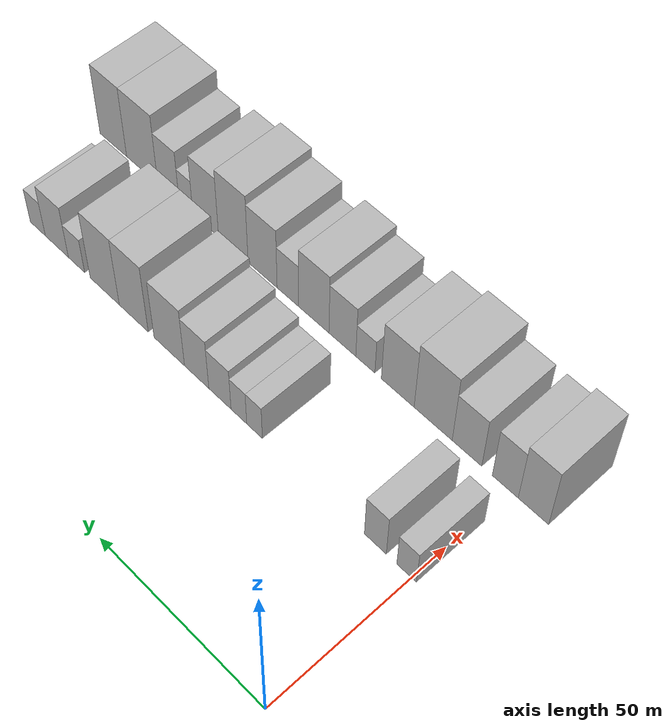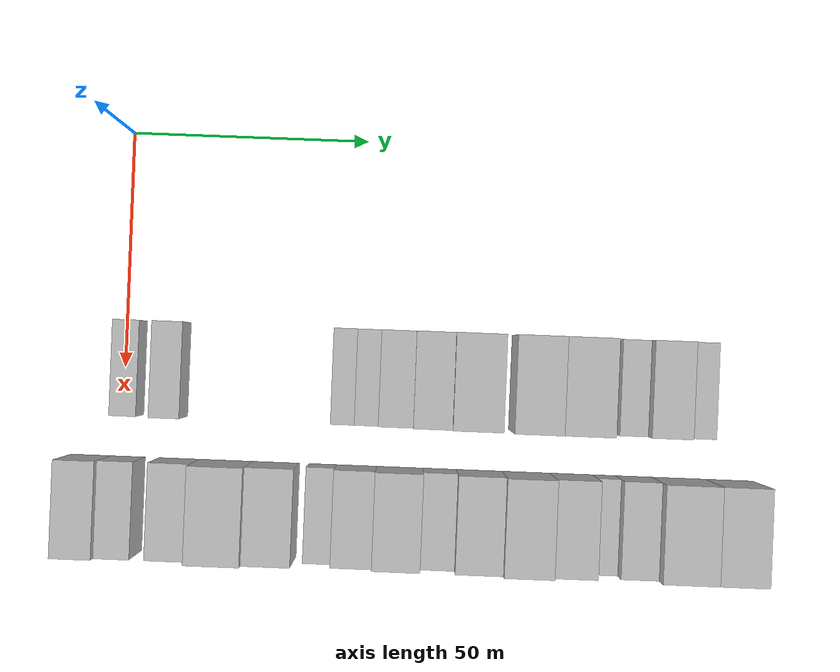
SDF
<sdf version="1.6">
 <world name="default">
  <model name="building_31">
   <static>1</static>
   <pose>50.0000 1.4991 0 0.000000 0.000000 0.000000</pose>
   <link name="link">
    <pose>0 0 6.00 0 0 0</pose>
    <collision name="collision"><geometry><box><size>20.0000 5.5599 12.0000</size></box></geometry></collision>
    <visual name="visual">
     <cast_shadows>0</cast_shadows>
     <geometry><box><size>20.0000 5.5599 12.0000</size></box></geometry>
     <material>
      <script>
       <uri>model://HANNAS_wall/materials/scripts</uri>
       <uri>model://HANNAS_wall/materials/textures</uri>
       <name>vrc/HANNAS_wall</name>
      </script>
     </material>
    </visual>
   </link>
  </model>
  <model name="building_32">
   <static>1</static>
   <pose>50.0000 10.4572 0 0.000000 0.000000 0.000000</pose>
   <link name="link">
    <pose>0 0 7.50 0 0 0</pose>
    <collision name="collision"><geometry><box><size>20.0000 6.3563 15.0000</size></box></geometry></collision>
    <visual name="visual">
     <cast_shadows>0</cast_shadows>
     <geometry><box><size>20.0000 6.3563 15.0000</size></box></geometry>
     <material>
      <script>
       <uri>model://HANNAS_wall/materials/scripts</uri>
       <uri>model://HANNAS_wall/materials/textures</uri>
       <name>vrc/HANNAS_wall</name>
      </script>
     </material>
    </visual>
   </link>
  </model>
  <model name="building_33">
   <static>1</static>
   <pose>50.0000 47.0578 0 0.000000 0.000000 0.000000</pose>
   <link name="link">
    <pose>0 0 6.00 0 0 0</pose>
    <collision name="collision"><geometry><box><size>20.0000 4.9483 12.0000</size></box></geometry></collision>
    <visual name="visual">
     <cast_shadows>0</cast_shadows>
     <geometry><box><size>20.0000 4.9483 12.0000</size></box></geometry>
     <material>
      <script>
       <uri>model://HANNAS_wall/materials/scripts</uri>
       <uri>model://HANNAS_wall/materials/textures</uri>
       <name>vrc/HANNAS_wall</name>
      </script>
     </material>
    </visual>
   </link>
  </model>
  <model name="building_34">
   <static>1</static>
   <pose>50.0000 52.0411 0 0.000000 0.000000 0.000000</pose>
   <link name="link">
    <pose>0 0 6.00 0 0 0</pose>
    <collision name="collision"><geometry><box><size>20.0000 5.0184 12.0000</size></box></geometry></collision>
    <visual name="visual">
     <cast_shadows>0</cast_shadows>
     <geometry><box><size>20.0000 5.0184 12.0000</size></box></geometry>
     <material>
      <script>
       <uri>model://HANNAS_wall/materials/scripts</uri>
       <uri>model://HANNAS_wall/materials/textures</uri>
       <name>vrc/HANNAS_wall</name>
      </script>
     </material>
    </visual>
   </link>
  </model>
  <model name="building_35">
   <static>1</static>
   <pose>50.0000 58.1626 0 0.000000 0.000000 0.000000</pose>
   <link name="link">
    <pose>0 0 7.50 0 0 0</pose>
    <collision name="collision"><geometry><box><size>20.0000 7.2245 15.0000</size></box></geometry></collision>
    <visual name="visual">
     <cast_shadows>0</cast_shadows>
     <geometry><box><size>20.0000 7.2245 15.0000</size></box></geometry>
     <material>
      <script>
       <uri>model://HANNAS_wall/materials/scripts</uri>
       <uri>model://HANNAS_wall/materials/textures</uri>
       <name>vrc/HANNAS_wall</name>
      </script>
     </material>
    </visual>
   </link>
  </model>
  <model name="building_36">
   <static>1</static>
   <pose>50.0000 65.8021 0 0.000000 0.000000 0.000000</pose>
   <link name="link">
    <pose>0 0 9.00 0 0 0</pose>
    <collision name="collision"><geometry><box><size>20.0000 8.0544 18.0000</size></box></geometry></collision>
    <visual name="visual">
     <cast_shadows>0</cast_shadows>
     <geometry><box><size>20.0000 8.0544 18.0000</size></box></geometry>
     <material>
      <script>
       <uri>model://HANNAS_wall/materials/scripts</uri>
       <uri>model://HANNAS_wall/materials/textures</uri>
       <name>vrc/HANNAS_wall</name>
      </script>
     </material>
    </visual>
   </link>
  </model>
  <model name="building_37">
   <static>1</static>
   <pose>50.0000 74.9746 0 0.000000 0.000000 0.000000</pose>
   <link name="link">
    <pose>0 0 10.50 0 0 0</pose>
    <collision name="collision"><geometry><box><size>20.0000 10.2906 21.0000</size></box></geometry></collision>
    <visual name="visual">
     <cast_shadows>0</cast_shadows>
     <geometry><box><size>20.0000 10.2906 21.0000</size></box></geometry>
     <material>
      <script>
       <uri>model://HANNAS_wall/materials/scripts</uri>
       <uri>model://HANNAS_wall/materials/textures</uri>
       <name>vrc/HANNAS_wall</name>
      </script>
     </material>
    </visual>
   </link>
  </model>
  <model name="building_38">
   <static>1</static>
   <pose>50.0000 87.1517 0 0.000000 0.000000 0.000000</pose>
   <link name="link">
    <pose>0 0 12.00 0 0 0</pose>
    <collision name="collision"><geometry><box><size>20.0000 10.0634 24.0000</size></box></geometry></collision>
    <visual name="visual">
     <cast_shadows>0</cast_shadows>
     <geometry><box><size>20.0000 10.0634 24.0000</size></box></geometry>
     <material>
      <script>
       <uri>model://HANNAS_wall/materials/scripts</uri>
       <uri>model://HANNAS_wall/materials/textures</uri>
       <name>vrc/HANNAS_wall</name>
      </script>
     </material>
    </visual>
   </link>
  </model>
  <model name="building_39">
   <static>1</static>
   <pose>50.0000 97.3643 0 0.000000 0.000000 0.000000</pose>
   <link name="link">
    <pose>0 0 12.00 0 0 0</pose>
    <collision name="collision"><geometry><box><size>20.0000 10.3618 24.0000</size></box></geometry></collision>
    <visual name="visual">
     <cast_shadows>0</cast_shadows>
     <geometry><box><size>20.0000 10.3618 24.0000</size></box></geometry>
     <material>
      <script>
       <uri>model://HANNAS_wall/materials/scripts</uri>
       <uri>model://HANNAS_wall/materials/textures</uri>
       <name>vrc/HANNAS_wall</name>
      </script>
     </material>
    </visual>
   </link>
  </model>
  <model name="building_40">
   <static>1</static>
   <pose>50.0000 107.4989 0 0.000000 0.000000 0.000000</pose>
   <link name="link">
    <pose>0 0 6.00 0 0 0</pose>
    <collision name="collision"><geometry><box><size>20.0000 5.9075 12.0000</size></box></geometry></collision>
    <visual name="visual">
     <cast_shadows>0</cast_shadows>
     <geometry><box><size>20.0000 5.9075 12.0000</size></box></geometry>
     <material>
      <script>
       <uri>model://HANNAS_wall/materials/scripts</uri>
       <uri>model://HANNAS_wall/materials/textures</uri>
       <name>vrc/HANNAS_wall</name>
      </script>
     </material>
    </visual>
   </link>
  </model>
  <model name="building_41">
   <static>1</static>
   <pose>50.0000 114.7138 0 0.000000 0.000000 0.000000</pose>
   <link name="link">
    <pose>0 0 9.00 0 0 0</pose>
    <collision name="collision"><geometry><box><size>20.0000 8.5223 18.0000</size></box></geometry></collision>
    <visual name="visual">
     <cast_shadows>0</cast_shadows>
     <geometry><box><size>20.0000 8.5223 18.0000</size></box></geometry>
     <material>
      <script>
       <uri>model://HANNAS_wall/materials/scripts</uri>
       <uri>model://HANNAS_wall/materials/textures</uri>
       <name>vrc/HANNAS_wall</name>
      </script>
     </material>
    </visual>
   </link>
  </model>
  <model name="building_42">
   <static>1</static>
   <pose>50.0000 121.7857 0 0.000000 0.000000 0.000000</pose>
   <link name="link">
    <pose>0 0 6.00 0 0 0</pose>
    <collision name="collision"><geometry><box><size>20.0000 5.6216 12.0000</size></box></geometry></collision>
    <visual name="visual">
     <cast_shadows>0</cast_shadows>
     <geometry><box><size>20.0000 5.6216 12.0000</size></box></geometry>
     <material>
      <script>
       <uri>model://HANNAS_wall/materials/scripts</uri>
       <uri>model://HANNAS_wall/materials/textures</uri>
       <name>vrc/HANNAS_wall</name>
      </script>
     </material>
    </visual>
   </link>
  </model>
  <model name="building_87">
   <static>1</static>
   <pose>79.0000 -6.6192 0 0.000000 0.000000 0.000000</pose>
   <link name="link">
    <pose>0 0 10.50 0 0 0</pose>
    <collision name="collision"><geometry><box><size>20.0000 8.4685 21.0000</size></box></geometry></collision>
    <visual name="visual">
     <cast_shadows>0</cast_shadows>
     <geometry><box><size>20.0000 8.4685 21.0000</size></box></geometry>
     <material>
      <script>
       <uri>model://HANNAS_wall/materials/scripts</uri>
       <uri>model://HANNAS_wall/materials/textures</uri>
       <name>vrc/HANNAS_wall</name>
      </script>
     </material>
    </visual>
   </link>
  </model>
  <model name="building_88">
   <static>1</static>
   <pose>79.0000 1.2902 0 0.000000 0.000000 0.000000</pose>
   <link name="link">
    <pose>0 0 9.00 0 0 0</pose>
    <collision name="collision"><geometry><box><size>20.0000 7.3502 18.0000</size></box></geometry></collision>
    <visual name="visual">
     <cast_shadows>0</cast_shadows>
     <geometry><box><size>20.0000 7.3502 18.0000</size></box></geometry>
     <material>
      <script>
       <uri>model://HANNAS_wall/materials/scripts</uri>
       <uri>model://HANNAS_wall/materials/textures</uri>
       <name>vrc/HANNAS_wall</name>
      </script>
     </material>
    </visual>
   </link>
  </model>
  <model name="building_89">
   <static>1</static>
   <pose>79.0000 12.2689 0 0.000000 0.000000 0.000000</pose>
   <link name="link">
    <pose>0 0 9.00 0 0 0</pose>
    <collision name="collision"><geometry><box><size>20.0000 8.6073 18.0000</size></box></geometry></collision>
    <visual name="visual">
     <cast_shadows>0</cast_shadows>
     <geometry><box><size>20.0000 8.6073 18.0000</size></box></geometry>
     <material>
      <script>
       <uri>model://HANNAS_wall/materials/scripts</uri>
       <uri>model://HANNAS_wall/materials/textures</uri>
       <name>vrc/HANNAS_wall</name>
      </script>
     </material>
    </visual>
   </link>
  </model>
  <model name="building_90">
   <static>1</static>
   <pose>79.0000 22.2402 0 0.000000 0.000000 0.000000</pose>
   <link name="link">
    <pose>0 0 12.00 0 0 0</pose>
    <collision name="collision"><geometry><box><size>20.0000 11.3353 24.0000</size></box></geometry></collision>
    <visual name="visual">
     <cast_shadows>0</cast_shadows>
     <geometry><box><size>20.0000 11.3353 24.0000</size></box></geometry>
     <material>
      <script>
       <uri>model://HANNAS_wall/materials/scripts</uri>
       <uri>model://HANNAS_wall/materials/textures</uri>
       <name>vrc/HANNAS_wall</name>
      </script>
     </material>
    </visual>
   </link>
  </model>
  <model name="building_91">
   <static>1</static>
   <pose>79.0000 32.9184 0 0.000000 0.000000 0.000000</pose>
   <link name="link">
    <pose>0 0 10.50 0 0 0</pose>
    <collision name="collision"><geometry><box><size>20.0000 10.0211 21.0000</size></box></geometry></collision>
    <visual name="visual">
     <cast_shadows>0</cast_shadows>
     <geometry><box><size>20.0000 10.0211 21.0000</size></box></geometry>
     <material>
      <script>
       <uri>model://HANNAS_wall/materials/scripts</uri>
       <uri>model://HANNAS_wall/materials/textures</uri>
       <name>vrc/HANNAS_wall</name>
      </script>
     </material>
    </visual>
   </link>
  </model>
  <model name="building_92">
   <static>1</static>
   <pose>79.0000 42.9083 0 0.000000 0.000000 0.000000</pose>
   <link name="link">
    <pose>0 0 6.00 0 0 0</pose>
    <collision name="collision"><geometry><box><size>20.0000 5.9586 12.0000</size></box></geometry></collision>
    <visual name="visual">
     <cast_shadows>0</cast_shadows>
     <geometry><box><size>20.0000 5.9586 12.0000</size></box></geometry>
     <material>
      <script>
       <uri>model://HANNAS_wall/materials/scripts</uri>
       <uri>model://HANNAS_wall/materials/textures</uri>
       <name>vrc/HANNAS_wall</name>
      </script>
     </material>
    </visual>
   </link>
  </model>
  <model name="building_93">
   <static>1</static>
   <pose>79.0000 50.1505 0 0.000000 0.000000 0.000000</pose>
   <link name="link">
    <pose>0 0 9.00 0 0 0</pose>
    <collision name="collision"><geometry><box><size>20.0000 8.5257 18.0000</size></box></geometry></collision>
    <visual name="visual">
     <cast_shadows>0</cast_shadows>
     <geometry><box><size>20.0000 8.5257 18.0000</size></box></geometry>
     <material>
      <script>
       <uri>model://HANNAS_wall/materials/scripts</uri>
       <uri>model://HANNAS_wall/materials/textures</uri>
       <name>vrc/HANNAS_wall</name>
      </script>
     </material>
    </visual>
   </link>
  </model>
  <model name="building_94">
   <static>1</static>
   <pose>79.0000 59.3352 0 0.000000 0.000000 0.000000</pose>
   <link name="link">
    <pose>0 0 10.50 0 0 0</pose>
    <collision name="collision"><geometry><box><size>20.0000 9.8437 21.0000</size></box></geometry></collision>
    <visual name="visual">
     <cast_shadows>0</cast_shadows>
     <geometry><box><size>20.0000 9.8437 21.0000</size></box></geometry>
     <material>
      <script>
       <uri>model://HANNAS_wall/materials/scripts</uri>
       <uri>model://HANNAS_wall/materials/textures</uri>
       <name>vrc/HANNAS_wall</name>
      </script>
     </material>
    </visual>
   </link>
  </model>
  <model name="building_95">
   <static>1</static>
   <pose>79.0000 67.8153 0 0.000000 0.000000 0.000000</pose>
   <link name="link">
    <pose>0 0 7.50 0 0 0</pose>
    <collision name="collision"><geometry><box><size>20.0000 7.1166 15.0000</size></box></geometry></collision>
    <visual name="visual">
     <cast_shadows>0</cast_shadows>
     <geometry><box><size>20.0000 7.1166 15.0000</size></box></geometry>
     <material>
      <script>
       <uri>model://HANNAS_wall/materials/scripts</uri>
       <uri>model://HANNAS_wall/materials/textures</uri>
       <name>vrc/HANNAS_wall</name>
      </script>
     </material>
    </visual>
   </link>
  </model>
  <model name="building_96">
   <static>1</static>
   <pose>79.0000 76.2552 0 0.000000 0.000000 0.000000</pose>
   <link name="link">
    <pose>0 0 10.50 0 0 0</pose>
    <collision name="collision"><geometry><box><size>20.0000 9.7632 21.0000</size></box></geometry></collision>
    <visual name="visual">
     <cast_shadows>0</cast_shadows>
     <geometry><box><size>20.0000 9.7632 21.0000</size></box></geometry>
     <material>
      <script>
       <uri>model://HANNAS_wall/materials/scripts</uri>
       <uri>model://HANNAS_wall/materials/textures</uri>
       <name>vrc/HANNAS_wall</name>
      </script>
     </material>
    </visual>
   </link>
  </model>
  <model name="building_97">
   <static>1</static>
   <pose>79.0000 86.2231 0 0.000000 0.000000 0.000000</pose>
   <link name="link">
    <pose>0 0 12.00 0 0 0</pose>
    <collision name="collision"><geometry><box><size>20.0000 10.1726 24.0000</size></box></geometry></collision>
    <visual name="visual">
     <cast_shadows>0</cast_shadows>
     <geometry><box><size>20.0000 10.1726 24.0000</size></box></geometry>
     <material>
      <script>
       <uri>model://HANNAS_wall/materials/scripts</uri>
       <uri>model://HANNAS_wall/materials/textures</uri>
       <name>vrc/HANNAS_wall</name>
      </script>
     </material>
    </visual>
   </link>
  </model>
  <model name="building_98">
   <static>1</static>
   <pose>79.0000 95.8264 0 0.000000 0.000000 0.000000</pose>
   <link name="link">
    <pose>0 0 10.50 0 0 0</pose>
    <collision name="collision"><geometry><box><size>20.0000 9.0341 21.0000</size></box></geometry></collision>
    <visual name="visual">
     <cast_shadows>0</cast_shadows>
     <geometry><box><size>20.0000 9.0341 21.0000</size></box></geometry>
     <material>
      <script>
       <uri>model://HANNAS_wall/materials/scripts</uri>
       <uri>model://HANNAS_wall/materials/textures</uri>
       <name>vrc/HANNAS_wall</name>
      </script>
     </material>
    </visual>
   </link>
  </model>
  <model name="building_99">
   <static>1</static>
   <pose>79.0000 102.7937 0 0.000000 0.000000 0.000000</pose>
   <link name="link">
    <pose>0 0 6.00 0 0 0</pose>
    <collision name="collision"><geometry><box><size>20.0000 4.9004 12.0000</size></box></geometry></collision>
    <visual name="visual">
     <cast_shadows>0</cast_shadows>
     <geometry><box><size>20.0000 4.9004 12.0000</size></box></geometry>
     <material>
      <script>
       <uri>model://HANNAS_wall/materials/scripts</uri>
       <uri>model://HANNAS_wall/materials/textures</uri>
       <name>vrc/HANNAS_wall</name>
      </script>
     </material>
    </visual>
   </link>
  </model>
  <model name="building_100">
   <static>1</static>
   <pose>79.0000 109.1263 0 0.000000 0.000000 0.000000</pose>
   <link name="link">
    <pose>0 0 9.00 0 0 0</pose>
    <collision name="collision"><geometry><box><size>20.0000 7.7648 18.0000</size></box></geometry></collision>
    <visual name="visual">
     <cast_shadows>0</cast_shadows>
     <geometry><box><size>20.0000 7.7648 18.0000</size></box></geometry>
     <material>
      <script>
       <uri>model://HANNAS_wall/materials/scripts</uri>
       <uri>model://HANNAS_wall/materials/textures</uri>
       <name>vrc/HANNAS_wall</name>
      </script>
     </material>
    </visual>
   </link>
  </model>
  <model name="building_101">
   <static>1</static>
   <pose>79.0000 118.7620 0 0.000000 0.000000 0.000000</pose>
   <link name="link">
    <pose>0 0 12.00 0 0 0</pose>
    <collision name="collision"><geometry><box><size>20.0000 11.5066 24.0000</size></box></geometry></collision>
    <visual name="visual">
     <cast_shadows>0</cast_shadows>
     <geometry><box><size>20.0000 11.5066 24.0000</size></box></geometry>
     <material>
      <script>
       <uri>model://HANNAS_wall/materials/scripts</uri>
       <uri>model://HANNAS_wall/materials/textures</uri>
       <name>vrc/HANNAS_wall</name>
      </script>
     </material>
    </visual>
   </link>
  </model>
  <model name="building_102">
   <static>1</static>
   <pose>79.0000 129.5415 0 0.000000 0.000000 0.000000</pose>
   <link name="link">
    <pose>0 0 12.00 0 0 0</pose>
    <collision name="collision"><geometry><box><size>20.0000 10.0525 24.0000</size></box></geometry></collision>
    <visual name="visual">
     <cast_shadows>0</cast_shadows>
     <geometry><box><size>20.0000 10.0525 24.0000</size></box></geometry>
     <material>
      <script>
       <uri>model://HANNAS_wall/materials/scripts</uri>
       <uri>model://HANNAS_wall/materials/textures</uri>
       <name>vrc/HANNAS_wall</name>
      </script>
     </material>
    </visual>
   </link>
  </model>
 </world>
</sdf>
